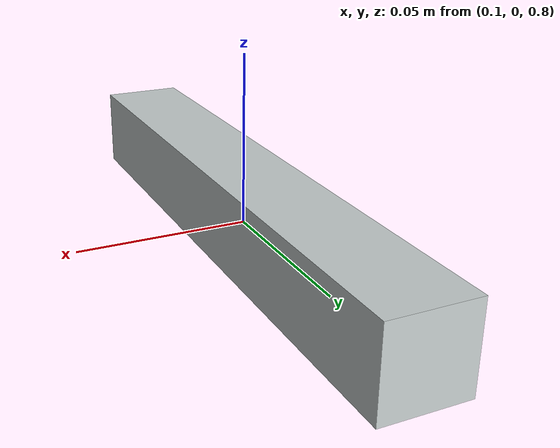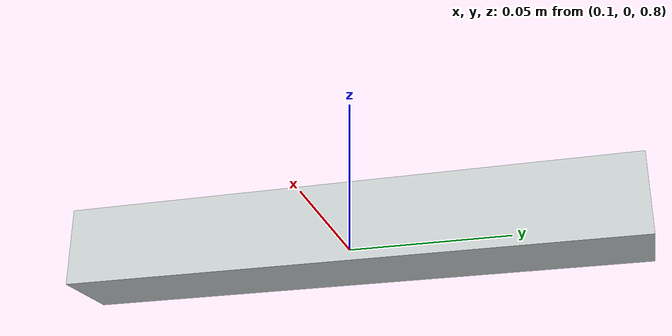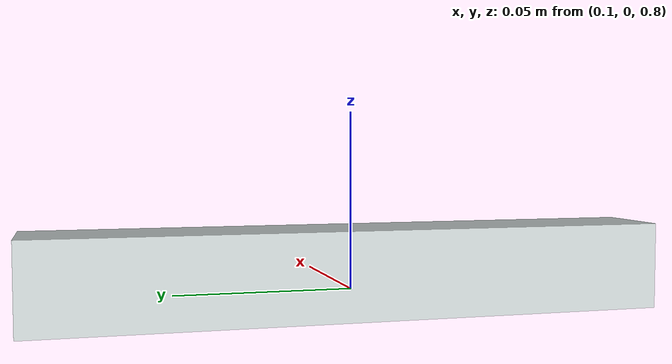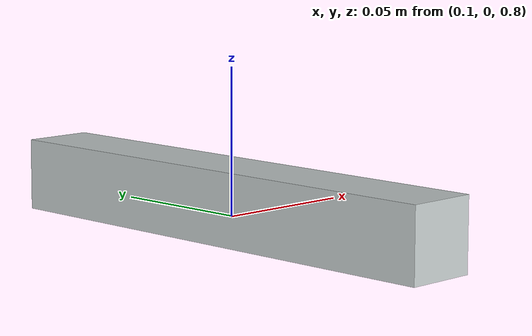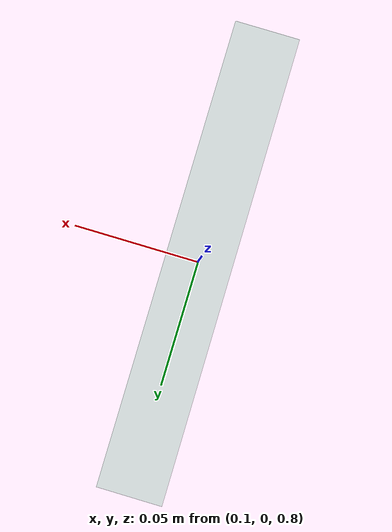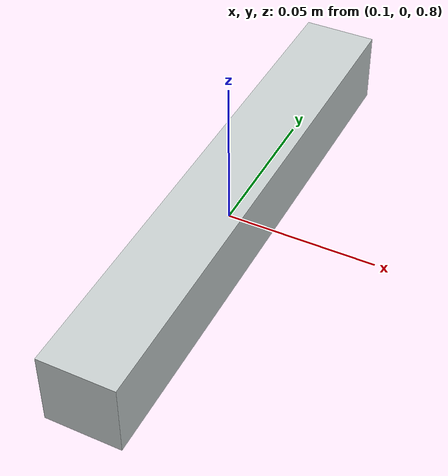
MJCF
<mujoco model="milk">
  <asset>
    <mesh file="meshes/milk.msh" name="milk_mesh" scale="0.9 0.9 0.9"/>
    <texture file="../textures/ceramic.png" name="tex-ceramic" type="2d"/>
    <material name="ceramic" reflectance="0.5" texrepeat="1 1" texture="tex-ceramic" texuniform="true"/>
  </asset>
  <worldbody>
    <body>
      <body name="object">
        <geom pos="0.1 0 0.805" quat="1.0 0 0 0" size="0.0125 0.09 0.0125" type="box" solimp="0.998 0.998 0.001" solref="-10000 -6" density="1000" friction="0.95 0.3 0.1" group="0" condim="6" rgba="0.78 0.81 0.81 1" />

      </body>
      <site rgba="0 0 0 0" size="0.005" pos="0 0 -0.085" name="bottom_site"/>
      <site rgba="0 0 0 0" size="0.005" pos="0 0 0.075" name="top_site"/>
      <site rgba="0 0 0 0" size="0.005" pos="0.025 0.025 0" name="horizontal_radius_site"/>
    </body>
  </worldbody>
</mujoco>
